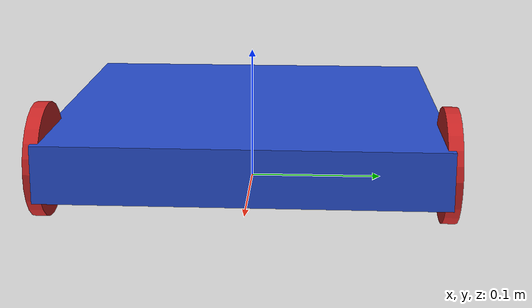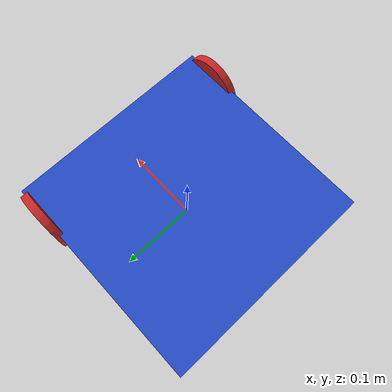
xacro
<?xml version="1.0"?>
<!-- This is the main URDF file. It contais the root of the robot description-->
<robot xmlns:xacro="http://www.ros.org/wiki/xacro"  name="francesca">
    <!-- Arguments to enable/disable features -->
    <xacro:arg name="use_dummy_motors" default="false" />
    <xacro:arg name="use_gazebo" default="false" />
    <xacro:arg name="use_lidar" default="false" />
    <xacro:arg name="use_camera" default="false" />

    <!-- Include the xacro files that define the butia chassis -->
    <xacro:include filename="butia.xacro" />

    <!-- Include the lidar module -->
    <xacro:include filename="lidar.xacro" />
    <xacro:francesca_lidar use_lidar="$(arg use_lidar)" use_gazebo="$(arg use_gazebo)"/>

    <!-- Include the webcam module -->
    <xacro:include filename="camera.xacro" />
    <xacro:francesca_camera use_camera="$(arg use_camera)" use_gazebo="$(arg use_gazebo)"/>

    <!-- Include the ros2_control subsystem  -->
    <xacro:include filename="ros2_control.xacro" />
    <xacro:francesca_ros2_control name="Francesca" use_dummy_motors="$(arg use_dummy_motors)" use_gazebo="$(arg use_gazebo)"/>
</robot>

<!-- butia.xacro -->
<robot xmlns:xacro="http://www.ros.org/wiki/xacro">

  <xacro:include filename="inertial_macros.xacro" />
  <xacro:include filename="dimensions_macros.xacro" />
  <xacro:include filename="materials_macros.xacro" />

  <!-- CHASSIS -->
  <!-- The origin is at the center of the top of the main plaque -->
  <link name="base_link">
    <visual>
      <geometry>
        <box size="${chassis_length} ${chassis_width} ${chassis_height}" />
      </geometry>
      <origin xyz="0 0 -${chassis_height/2}" rpy="0 0 0" />
      <material name="blue" />
    </visual>
    <collision>
      <geometry>
        <box size="${chassis_length} ${chassis_width} ${chassis_height}" />
      </geometry>
      <origin xyz="0 0 -${chassis_height/2}" rpy="0 0 0" />
    </collision>
    <xacro:inertial_box mass="${chassis_weight}" x="${chassis_length}" y="${chassis_width}"
      z="${chassis_height}">
      <origin xyz="0 0 -${chassis_height/2}" rpy="0 0 0" />
    </xacro:inertial_box>
  </link>

  <!-- WHEELS -->
  <link name="left_wheel_link">
    <visual>
      <geometry>
        <cylinder radius="${wheel_radius}" length="${wheel_width}" />
      </geometry>
      <origin xyz="0 0 0" rpy="1.57 0 0" />
      <material name="red" />
    </visual>
    <collision>
      <geometry>
        <cylinder radius="${wheel_radius}" length="${wheel_width}" />
      </geometry>
      <origin xyz="0 0 0" rpy="1.57 0 0" />
    </collision>
    <xacro:inertial_cylinder mass="0.05" length="${wheel_width}" radius="${wheel_radius}">
      <origin xyz="0 0 0" rpy="1.57 0 0" />
    </xacro:inertial_cylinder>
  </link>
  <joint name="left_wheel_joint" type="continuous">
    <parent link="base_link" />
    <child link="left_wheel_link" />
    <origin xyz="${wheel_offset_length} ${wheel_offset_width} ${wheel_offset_height}"
      rpy="0 0 0" />
    <axis xyz="0 1 0 " />
  </joint>

  <link name="right_wheel_link">
    <visual>
      <geometry>
        <cylinder radius="${wheel_radius}" length="${wheel_width}" />
      </geometry>
      <origin xyz="0 0 0" rpy="1.57 0 0" />
      <material name="red" />
    </visual>
    <collision>
      <geometry>
        <cylinder radius="${wheel_radius}" length="${wheel_width}" />
      </geometry>
      <origin xyz="0 0 0" rpy="1.57 0 0" />
    </collision>
    <xacro:inertial_cylinder mass="0.05" length="${wheel_width}" radius="${wheel_radius}">
      <origin xyz="0 0 0" rpy="1.57 0 0" />
    </xacro:inertial_cylinder>
  </link>
  <joint name="right_wheel_joint" type="continuous">
    <parent link="base_link" />
    <child link="right_wheel_link" />
    <origin xyz="${wheel_offset_length} ${-wheel_offset_width} ${wheel_offset_height}"
      rpy="0 0 0" />
    <axis xyz="0 1 0 " />
  </joint>

  <!-- CASTER -->
  <link name="caster_link">
    <visual>
      <geometry>
        <sphere radius="${caster_radius}" />
      </geometry>
      <origin xyz="0 0 0" rpy="0 0 0" />
      <material name="red" />
    </visual>
    <collision>
      <geometry>
        <sphere radius="${caster_radius}" />
        <origin xyz="0 0 0" rpy="0 0 0" />
      </geometry>
    </collision>
    <xacro:inertial_sphere mass="0.01" radius="${caster_radius}">
      <origin xyz="0 0 0" rpy="0 0 0" />
    </xacro:inertial_sphere>
  </link>
  <joint name="base_caster_joint" type="fixed">
    <parent link="base_link" />
    <child link="caster_link" />
    <origin xyz="${caster_offset_length} 0 ${wheel_offset_height-wheel_radius + caster_radius}"
      rpy="0 0 0" />
  </joint>
  <gazebo reference="caster_link">
    <mu>0.01</mu>
    <mu2>0.01</mu2>
  </gazebo>

  <!-- BASE FOOTPRINT -->
  <link name="base_footprint" />
  <joint name="base_joint" type="fixed">
    <parent link="base_footprint" />
    <child link="base_link" />
    <origin xyz="0 0 ${wheel_radius-wheel_offset_height}" rpy="0 0 0" />
  </joint>

</robot>

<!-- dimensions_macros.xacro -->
<robot xmlns:xacro="http://www.ros.org/wiki/xacro" >

    <!--
    Following REP105, (length, width, height) -> (x, y, z)
    The *_offset_* fields give a placement respect to  robot's chassis center (see butia.xacro)
    -->

    <xacro:property name="chassis_length" value="0.28"/>
    <xacro:property name="chassis_width" value="0.28"/>
    <xacro:property name="chassis_height" value="0.04"/>
    <xacro:property name="chassis_weight" value="0.1"/> <!--FIXME-->

    <xacro:property name="lidar_height" value="0.05"/>
    <xacro:property name="lidar_radius" value="0.05"/>
    <xacro:property name="lidar_offset_length" value="0.1"/>
    <xacro:property name="lidar_offset_width" value="0"/>
    <xacro:property name="lidar_offset_height" value="0.025"/>

    <xacro:property name="camera_length" value="0.01"/>
    <xacro:property name="camera_width" value="0.04"/>
    <xacro:property name="camera_height" value="0.02"/>
    <xacro:property name="camera_offset_length" value="0.15"/>
    <xacro:property name="camera_offset_width" value="0"/>
    <xacro:property name="camera_offset_height" value="0.11"/>

    <xacro:property name="wheel_width" value="0.01"/>
    <xacro:property name="wheel_radius" value="0.04"/>
    <!-- for the left wheel, right one considered symmetrical -->
    <xacro:property name="wheel_offset_length" value="0.1"/> <!--FIXME-->
    <xacro:property name="wheel_offset_width" value="0.14"/> <!--FIXME-->
    <xacro:property name="wheel_offset_height" value="-0.02"/> <!--FIXME-->

    <xacro:property name="caster_radius" value="0.02"/>
    <!-- assumed centered, height will be computed to keep robot horizontal -->
    <xacro:property name="caster_offset_length" value="-0.10"/> <!--FIXME-->

</robot>
